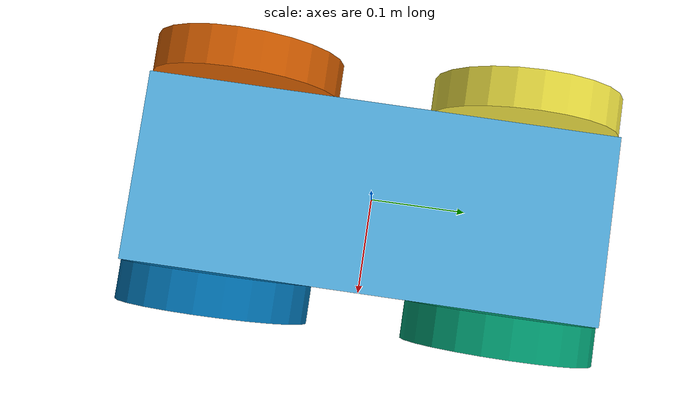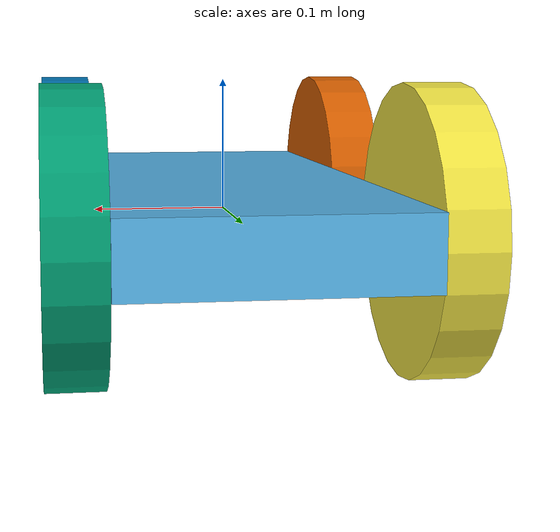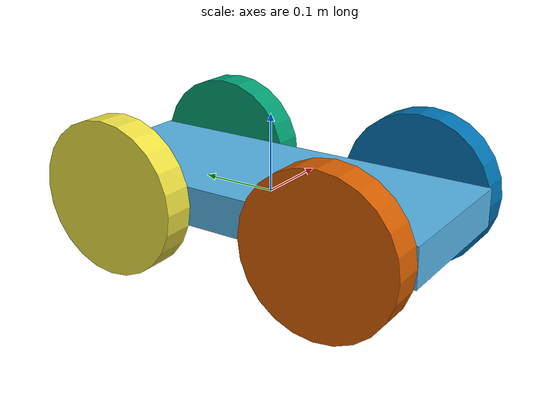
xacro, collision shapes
<?xml version="1.0"?>
<robot name="rover" xmlns:xacro="http://www.ros.org/wiki/xacro">
  <xacro:property name="PI" value="3.1415926535897931"/>
  <xacro:property name="body_mass" value="4"/>
  <xacro:property name="wheel_width" value="0.04"/>
  <xacro:property name="wheel_diameter" value="0.2"/>
  <xacro:property name="wheel_mass" value="0.5"/>
  <xacro:property name="ns" value="rover" />
  <xacro:include filename="$(find rover_description)/urdf/rover.gazebo.xacro" />
  <xacro:property name="mesh_path" value="$(find rover_description)/models" />

  <link name="base_footprint"/>

  <joint name="base_joint" type="fixed">
    <parent link="base_footprint"/>
    <child link="base_link"/>
    <origin xyz="0 0 0" />
  </joint>

  <link name="base_link">
    <visual>
      <geometry>
        <box size="0.2 0.5 0.05"/>
      </geometry>
    </visual>
    <collision>
      <geometry>
        <box size="0.2 0.5 0.05"/>
      </geometry>
    </collision>
    <inertial>
      <mass value="${body_mass}"/>
      <inertia ixx="0.16666700" ixy="0.0" ixz="0.0" iyy="0.16666700" iyz="0.0" izz="0.16666700"/>
    </inertial>
  </link>

  <link name="right_wheel1">
    <visual>
      <origin xyz="0 0 0" rpy="0 0 ${PI}"/>
      <geometry>
        <mesh filename="file://${mesh_path}/meshes/14-010-p006.dae"/>
      </geometry>
    </visual>
    <collision>
      <origin xyz="0 0 0" rpy="0 ${PI/2} 0"/>
      <geometry>
        <cylinder radius="${wheel_diameter/2}" length="${wheel_width}"/>
      </geometry>
    </collision>
    <inertial>
      <mass value="${wheel_mass}"/>
      <inertia ixx="0.0013166667" ixy="0.0" ixz="0.0" iyy="0.0013166667" iyz="0.0" izz="0.0025"/>
    </inertial>
  </link>

  <joint name="base_to_right1" type="continuous">
    <limit effort="100" velocity="100"/>
    <joint_properties damping="0.0" friction="0.0"/>
    <dynamics damping="0.7"/>
    <parent link="base_link"/>
    <child link="right_wheel1"/>
    <axis xyz="1 0 0"/>
    <origin xyz="0.12 0.15 0"/>
  </joint>

   <link name="left_wheel1">
    <visual>
      <geometry>
        <mesh filename="file://${mesh_path}/meshes/14-010-p006.dae"/>
      </geometry>
    </visual>
    <collision>
      <origin xyz="0 0 0" rpy="0 ${PI/2} 0"/>
      <geometry>
        <cylinder radius="${wheel_diameter/2}" length="${wheel_width}"/>
      </geometry>
    </collision>
    <inertial>
      <mass value="${wheel_mass}"/>
      <inertia ixx="0.0013166667" ixy="0.0" ixz="0.0" iyy="0.0013166667" iyz="0.0" izz="0.0025"/>
    </inertial>
  </link>

  <joint name="base_to_left1" type="continuous">
    <axis xyz="1 0 0"/>
    <limit effort="100" velocity="100"/>
    <joint_properties damping="0.0" friction="0.0"/>
    <dynamics damping="0.7"/>
    <parent link="base_link"/>
    <child link="left_wheel1"/>
    <origin xyz="-0.12 0.15 0"/>
  </joint>

  <link name="right_wheel2">
    <visual>
      <origin xyz="0 0 0" rpy="0 0 ${PI}"/>
      <geometry>
        <mesh filename="file://${mesh_path}/meshes/14-010-p006.dae"/>
      </geometry>
    </visual>
    <collision>
      <origin xyz="0 0 0" rpy="0 ${PI/2} 0"/>
      <geometry>
        <cylinder radius="${wheel_diameter/2}" length="${wheel_width}"/>
      </geometry>
    </collision>
    <inertial>
      <mass value="${wheel_mass}"/>
      <inertia ixx="0.0013166667" ixy="0.0" ixz="0.0" iyy="0.0013166667" iyz="0.0" izz="0.0025"/>
    </inertial>
  </link>

  <joint name="base_to_right2" type="continuous">
    <axis xyz="1 0 0"/>
    <limit effort="100" velocity="100"/>
    <joint_properties damping="0.0" friction="0.0"/>
    <dynamics damping="0.7"/>
    <parent link="base_link"/>
    <child link="right_wheel2"/>
    <origin xyz="0.12 -0.15 0"/>
  </joint>

  <link name="left_wheel2">
    <visual>
      <geometry>
        <mesh filename="file://${mesh_path}/meshes/14-010-p006.dae"/>
      </geometry>
    </visual>
    <collision>
      <origin xyz="0 0 0" rpy="0 ${PI/2} 0"/>
      <geometry>
        <cylinder radius="${wheel_diameter/2}" length="${wheel_width}"/>
      </geometry>
    </collision>
    <inertial>
      <mass value="${wheel_mass}"/>
      <inertia ixx="0.0013166667" ixy="0.0" ixz="0.0" iyy="0.0013166667" iyz="0.0" izz="0.0025"/>
    </inertial>
  </link>

  <joint name="base_to_left2" type="continuous">
    <axis xyz="1 0 0"/>
    <limit effort="100" velocity="100"/>
    <joint_properties damping="0.0" friction="0.0"/>
    <dynamics damping="0.7"/>
    <parent link="base_link"/>
    <child link="left_wheel2"/>
    <origin xyz="-0.12 -0.15 0"/>
  </joint>

  <transmission name="right_wheel1_trans">
    <type>transmission_interface/SimpleTransmission</type>
    <joint name="base_to_right1">
      <hardwareInterface>hardware_interface/EffortJointInterface</hardwareInterface>
    </joint>
    <actuator name="right_wheel1_motor">
    </actuator>
  </transmission>
  <transmission name="right_wheel2_trans">
    <type>transmission_interface/SimpleTransmission</type>
    <joint name="base_to_right2">
      <hardwareInterface>hardware_interface/EffortJointInterface</hardwareInterface>
    </joint>
    <actuator name="right_wheel2_motor">
    </actuator>
  </transmission>
  <transmission name="left_wheel1_trans">
    <type>transmission_interface/SimpleTransmission</type>
    <joint name="base_to_left1">
      <hardwareInterface>hardware_interface/EffortJointInterface</hardwareInterface>
    </joint>
    <actuator name="left_wheel1_motor">
    </actuator>
  </transmission>
  <transmission name="left_wheel2_trans">
    <type>transmission_interface/SimpleTransmission</type>
    <joint name="base_to_left2">
      <hardwareInterface>hardware_interface/EffortJointInterface</hardwareInterface>
    </joint>
    <actuator name="left_wheel2_motor">
    </actuator>
  </transmission>

</robot>
